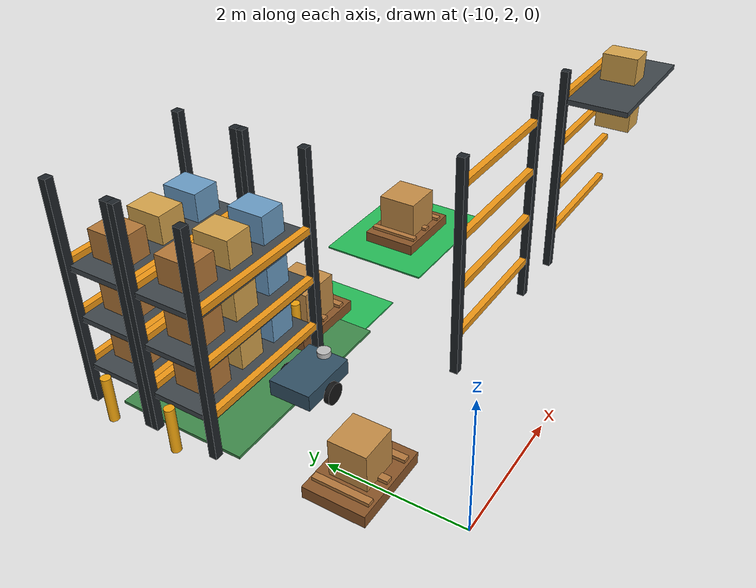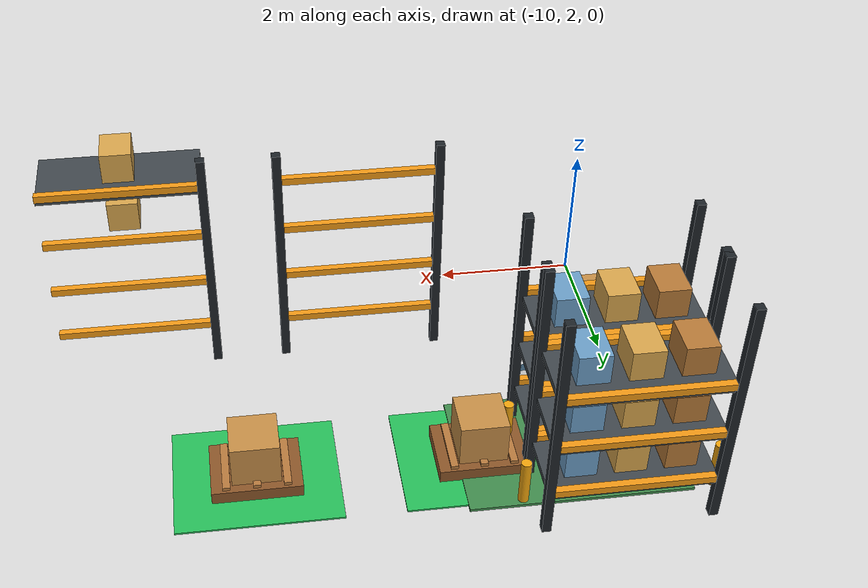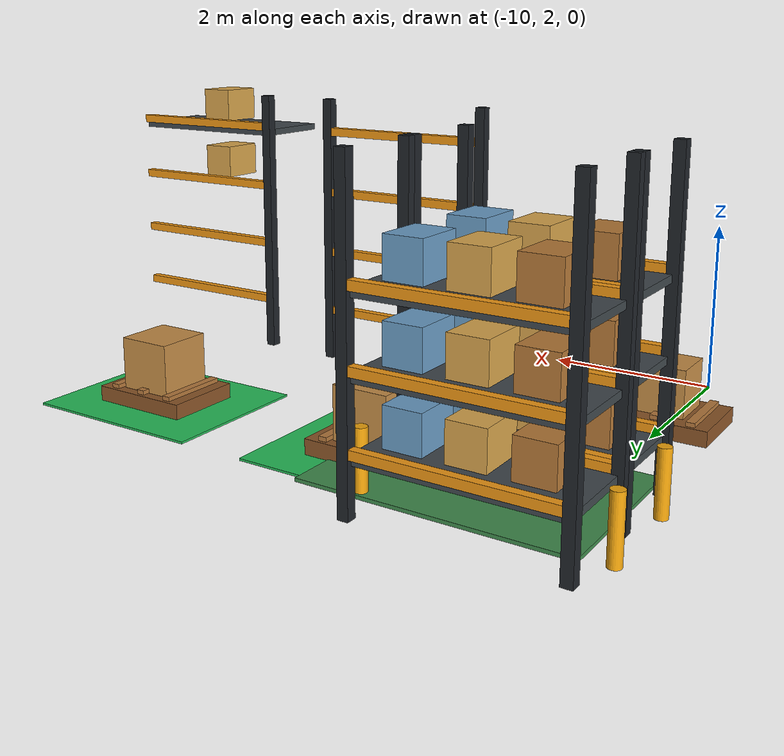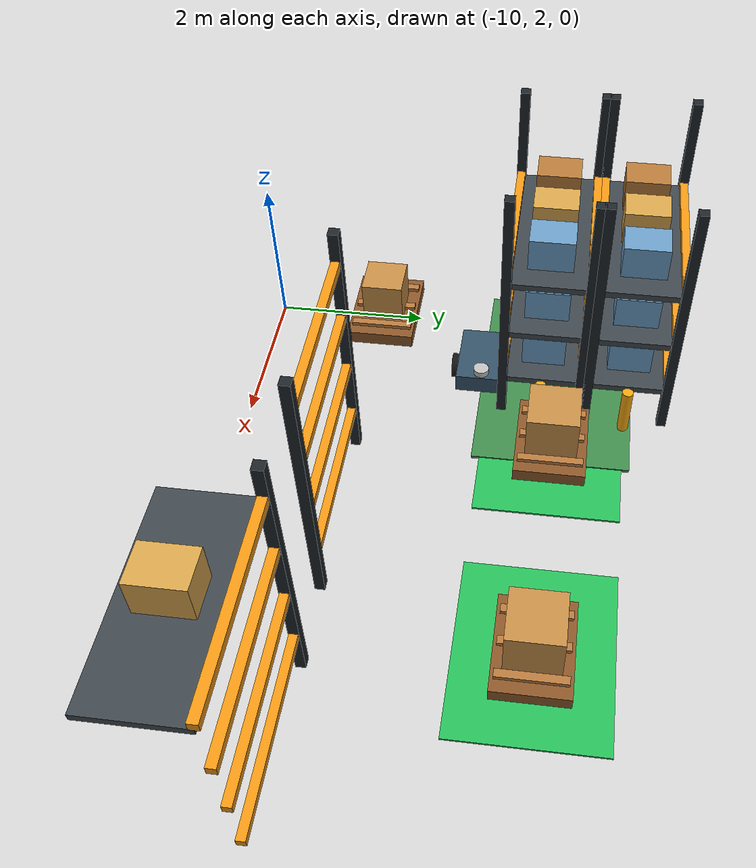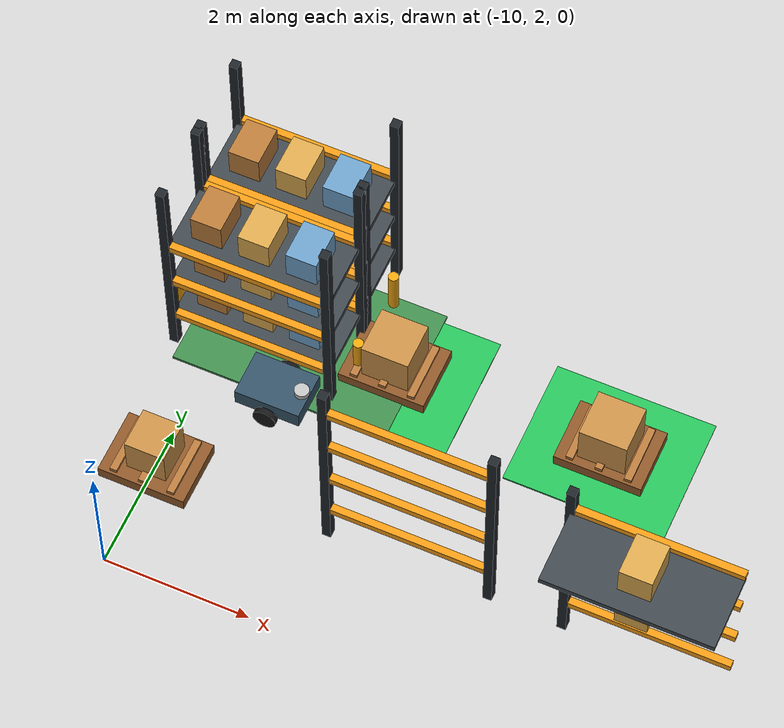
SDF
<sdf version="1.9">
 <world name="synaids_advanced_warehouse">
  <model name="pickup_zone">
   <static>true</static>
   <pose>-9 6 0.02 0 0 0</pose>
   <link name="link">
    <visual name="visual">
     <geometry><box><size>3 2 0.04</size></box></geometry>
     <material><ambient>0.08 0.25 0.10 1</ambient><diffuse>0.25 0.55 0.30 1</diffuse></material>
    </visual>
   </link>
  </model>
  <model name="R1">
   <pose>-9 5 0.25 0 0 0</pose>
   <link name="base_link">
    <inertial><mass>12</mass><inertia><ixx>0.5</ixx><iyy>0.5</iyy><izz>0.5</izz></inertia></inertial>
    <collision name="base_collision"><geometry><box><size>0.9 0.65 0.25</size></box></geometry></collision>
    <visual name="base_visual">
     <geometry><box><size>0.9 0.65 0.25</size></box></geometry>
     <material><ambient>0.10 0.16 0.20 1</ambient><diffuse>0.20 0.32 0.40 1</diffuse></material>
    </visual>
   </link>
   <link name="left_wheel">
    <pose>0 0.38 -0.12 1.5708 0 0</pose>
    <inertial><mass>1</mass><inertia><ixx>0.02</ixx><iyy>0.02</iyy><izz>0.02</izz></inertia></inertial>
    <collision name="collision">
     <geometry><cylinder><radius>0.16</radius><length>0.08</length></cylinder></geometry>
    </collision>
    <visual name="visual">
     <geometry><cylinder><radius>0.16</radius><length>0.08</length></cylinder></geometry>
     <material><ambient>0.03 0.03 0.03 1</ambient><diffuse>0.08 0.08 0.08 1</diffuse></material>
    </visual>
   </link>
   <link name="right_wheel">
    <pose>0 -0.38 -0.12 1.5708 0 0</pose>
    <inertial><mass>1</mass><inertia><ixx>0.02</ixx><iyy>0.02</iyy><izz>0.02</izz></inertia></inertial>
    <collision name="collision">
     <geometry><cylinder><radius>0.16</radius><length>0.08</length></cylinder></geometry>
    </collision>
    <visual name="visual">
     <geometry><cylinder><radius>0.16</radius><length>0.08</length></cylinder></geometry>
     <material><ambient>0.03 0.03 0.03 1</ambient><diffuse>0.08 0.08 0.08 1</diffuse></material>
    </visual>
   </link>
   <link name="sensor">
    <pose>0.35 0 0.18 0 0 0</pose>
    <visual name="visual">
     <geometry><cylinder><radius>0.10</radius><length>0.08</length></cylinder></geometry>
     <material><ambient>0.65 0.65 0.65 1</ambient><diffuse>0.75 0.75 0.75 1</diffuse></material>
    </visual>
   </link>
   <plugin filename="gz-sim-diff-drive-system" name="gz::sim::systems::DiffDrive">
    <left_joint>left_wheel_joint</left_joint>
    <right_joint>right_wheel_joint</right_joint>
    <wheel_separation>0.76</wheel_separation>
    <wheel_radius>0.16</wheel_radius>
    <topic>/R1/cmd_vel</topic>
    <odom_topic>/R1/odom</odom_topic>
    <frame_id>odom</frame_id>
    <child_frame_id>base_link</child_frame_id>
   </plugin>
   <link name="lidar">
    <pose>0 0 0.35 0 0 0</pose>
    <sensor name="lidar_sensor" type="gpu_lidar">
     <topic>/R1/scan</topic>
     <update_rate>10</update_rate>
     <lidar>
      <scan>
       <horizontal>
        <samples>360</samples>
        <resolution>1</resolution>
        <min_angle>-3.14159</min_angle>
        <max_angle>3.14159</max_angle>
       </horizontal>
      </scan>
      <range><min>0.12</min><max>12</max><resolution>0.01</resolution></range>
     </lidar>
    </sensor>
   </link>
   <joint name="left_wheel_joint" type="revolute">
    <parent>base_link</parent>
    <child>left_wheel</child>
    <axis><xyz>0 1 0</xyz></axis>
   </joint>
   <joint name="right_wheel_joint" type="revolute">
    <parent>base_link</parent>
    <child>right_wheel</child>
    <axis><xyz>0 1 0</xyz></axis>
   </joint>
  </model>
  <model name="storage_rack_1_post_1">
   <static>true</static>
   <pose>-7.6 3.5 1.7 0 0 0</pose>
   <link name="link">
    <visual name="visual">
     <geometry><box><size>0.12 0.12 3.4</size></box></geometry>
     <material>
      <ambient>0.12 0.14 0.16 1</ambient>
      <diffuse>0.12 0.14 0.16 1</diffuse>
      <specular>0.15 0.15 0.15 1</specular>
     </material>
    </visual>
    <collision name="collision"><geometry><box><size>0.12 0.12 3.4</size></box></geometry></collision>
   </link>
  </model>
  <model name="storage_rack_1_post_3">
   <static>true</static>
   <pose>-5.4 3.5 1.7 0 0 0</pose>
   <link name="link">
    <visual name="visual">
     <geometry><box><size>0.12 0.12 3.4</size></box></geometry>
     <material>
      <ambient>0.12 0.14 0.16 1</ambient>
      <diffuse>0.12 0.14 0.16 1</diffuse>
      <specular>0.15 0.15 0.15 1</specular>
     </material>
    </visual>
    <collision name="collision"><geometry><box><size>0.12 0.12 3.4</size></box></geometry></collision>
   </link>
  </model>
  <model name="storage_rack_1_beam_back_0">
   <static>true</static>
   <pose>-6.5 3.5 0.65 0 0 0</pose>
   <link name="link">
    <visual name="visual">
     <geometry><box><size>2.2 0.1 0.1</size></box></geometry>
     <material>
      <ambient>0.95 0.60 0.08 1</ambient>
      <diffuse>0.95 0.60 0.08 1</diffuse>
      <specular>0.15 0.15 0.15 1</specular>
     </material>
    </visual>
    <collision name="collision"><geometry><box><size>2.2 0.1 0.1</size></box></geometry></collision>
   </link>
  </model>
  <model name="storage_rack_1_beam_back_1">
   <static>true</static>
   <pose>-6.5 3.5 1.4300000000000002 0 0 0</pose>
   <link name="link">
    <visual name="visual">
     <geometry><box><size>2.2 0.1 0.1</size></box></geometry>
     <material>
      <ambient>0.95 0.60 0.08 1</ambient>
      <diffuse>0.95 0.60 0.08 1</diffuse>
      <specular>0.15 0.15 0.15 1</specular>
     </material>
    </visual>
    <collision name="collision"><geometry><box><size>2.2 0.1 0.1</size></box></geometry></collision>
   </link>
  </model>
  <model name="storage_rack_1_beam_back_2">
   <static>true</static>
   <pose>-6.5 3.5 2.21 0 0 0</pose>
   <link name="link">
    <visual name="visual">
     <geometry><box><size>2.2 0.1 0.1</size></box></geometry>
     <material>
      <ambient>0.95 0.60 0.08 1</ambient>
      <diffuse>0.95 0.60 0.08 1</diffuse>
      <specular>0.15 0.15 0.15 1</specular>
     </material>
    </visual>
    <collision name="collision"><geometry><box><size>2.2 0.1 0.1</size></box></geometry></collision>
   </link>
  </model>
  <model name="storage_rack_1_beam_back_3">
   <static>true</static>
   <pose>-6.5 3.5 2.9899999999999998 0 0 0</pose>
   <link name="link">
    <visual name="visual">
     <geometry><box><size>2.2 0.1 0.1</size></box></geometry>
     <material>
      <ambient>0.95 0.60 0.08 1</ambient>
      <diffuse>0.95 0.60 0.08 1</diffuse>
      <specular>0.15 0.15 0.15 1</specular>
     </material>
    </visual>
    <collision name="collision"><geometry><box><size>2.2 0.1 0.1</size></box></geometry></collision>
   </link>
  </model>
  <model name="storage_rack_2_post_1">
   <static>true</static>
   <pose>-4.4 3.5 1.7 0 0 0</pose>
   <link name="link">
    <visual name="visual">
     <geometry><box><size>0.12 0.12 3.4</size></box></geometry>
     <material>
      <ambient>0.12 0.14 0.16 1</ambient>
      <diffuse>0.12 0.14 0.16 1</diffuse>
      <specular>0.15 0.15 0.15 1</specular>
     </material>
    </visual>
    <collision name="collision"><geometry><box><size>0.12 0.12 3.4</size></box></geometry></collision>
   </link>
  </model>
  <model name="storage_rack_2_beam_back_0">
   <static>true</static>
   <pose>-3.3 3.5 0.65 0 0 0</pose>
   <link name="link">
    <visual name="visual">
     <geometry><box><size>2.2 0.1 0.1</size></box></geometry>
     <material>
      <ambient>0.95 0.60 0.08 1</ambient>
      <diffuse>0.95 0.60 0.08 1</diffuse>
      <specular>0.15 0.15 0.15 1</specular>
     </material>
    </visual>
    <collision name="collision"><geometry><box><size>2.2 0.1 0.1</size></box></geometry></collision>
   </link>
  </model>
  <model name="storage_rack_2_beam_back_1">
   <static>true</static>
   <pose>-3.3 3.5 1.4300000000000002 0 0 0</pose>
   <link name="link">
    <visual name="visual">
     <geometry><box><size>2.2 0.1 0.1</size></box></geometry>
     <material>
      <ambient>0.95 0.60 0.08 1</ambient>
      <diffuse>0.95 0.60 0.08 1</diffuse>
      <specular>0.15 0.15 0.15 1</specular>
     </material>
    </visual>
    <collision name="collision"><geometry><box><size>2.2 0.1 0.1</size></box></geometry></collision>
   </link>
  </model>
  <model name="storage_rack_2_beam_back_2">
   <static>true</static>
   <pose>-3.3 3.5 2.21 0 0 0</pose>
   <link name="link">
    <visual name="visual">
     <geometry><box><size>2.2 0.1 0.1</size></box></geometry>
     <material>
      <ambient>0.95 0.60 0.08 1</ambient>
      <diffuse>0.95 0.60 0.08 1</diffuse>
      <specular>0.15 0.15 0.15 1</specular>
     </material>
    </visual>
    <collision name="collision"><geometry><box><size>2.2 0.1 0.1</size></box></geometry></collision>
   </link>
  </model>
  <model name="storage_rack_2_package_2_1">
   <static>true</static>
   <pose>-3.3 3.0 2.43 0 0 0</pose>
   <link name="link">
    <visual name="visual">
     <geometry><box><size>0.42 0.55 0.42</size></box></geometry>
     <material>
      <ambient>0.85 0.65 0.30 1</ambient>
      <diffuse>0.85 0.65 0.30 1</diffuse>
      <specular>0.15 0.15 0.15 1</specular>
     </material>
    </visual>
    <collision name="collision"><geometry><box><size>0.42 0.55 0.42</size></box></geometry></collision>
   </link>
  </model>
  <model name="storage_rack_2_beam_back_3">
   <static>true</static>
   <pose>-3.3 3.5 2.9899999999999998 0 0 0</pose>
   <link name="link">
    <visual name="visual">
     <geometry><box><size>2.2 0.1 0.1</size></box></geometry>
     <material>
      <ambient>0.95 0.60 0.08 1</ambient>
      <diffuse>0.95 0.60 0.08 1</diffuse>
      <specular>0.15 0.15 0.15 1</specular>
     </material>
    </visual>
    <collision name="collision"><geometry><box><size>2.2 0.1 0.1</size></box></geometry></collision>
   </link>
  </model>
  <model name="storage_rack_2_shelf_3">
   <static>true</static>
   <pose>-3.3 3.0 2.9099999999999997 0 0 0</pose>
   <link name="link">
    <visual name="visual">
     <geometry><box><size>2.2 1.0 0.08</size></box></geometry>
     <material>
      <ambient>0.25 0.28 0.30 1</ambient>
      <diffuse>0.25 0.28 0.30 1</diffuse>
      <specular>0.15 0.15 0.15 1</specular>
     </material>
    </visual>
    <collision name="collision"><geometry><box><size>2.2 1.0 0.08</size></box></geometry></collision>
   </link>
  </model>
  <model name="storage_rack_2_package_3_1">
   <static>true</static>
   <pose>-3.3 3.0 3.21 0 0 0</pose>
   <link name="link">
    <visual name="visual">
     <geometry><box><size>0.42 0.55 0.42</size></box></geometry>
     <material>
      <ambient>0.85 0.65 0.30 1</ambient>
      <diffuse>0.85 0.65 0.30 1</diffuse>
      <specular>0.15 0.15 0.15 1</specular>
     </material>
    </visual>
    <collision name="collision"><geometry><box><size>0.42 0.55 0.42</size></box></geometry></collision>
   </link>
  </model>
  <model name="wall_rack_1_post_0">
   <static>true</static>
   <pose>-10.6 5.3 1.7 0 0 0</pose>
   <link name="link">
    <visual name="visual">
     <geometry><box><size>0.12 0.12 3.4</size></box></geometry>
     <material>
      <ambient>0.12 0.14 0.16 1</ambient>
      <diffuse>0.12 0.14 0.16 1</diffuse>
      <specular>0.15 0.15 0.15 1</specular>
     </material>
    </visual>
    <collision name="collision"><geometry><box><size>0.12 0.12 3.4</size></box></geometry></collision>
   </link>
  </model>
  <model name="wall_rack_1_post_1">
   <static>true</static>
   <pose>-10.6 6.3 1.7 0 0 0</pose>
   <link name="link">
    <visual name="visual">
     <geometry><box><size>0.12 0.12 3.4</size></box></geometry>
     <material>
      <ambient>0.12 0.14 0.16 1</ambient>
      <diffuse>0.12 0.14 0.16 1</diffuse>
      <specular>0.15 0.15 0.15 1</specular>
     </material>
    </visual>
    <collision name="collision"><geometry><box><size>0.12 0.12 3.4</size></box></geometry></collision>
   </link>
  </model>
  <model name="wall_rack_1_post_2">
   <static>true</static>
   <pose>-8.4 5.3 1.7 0 0 0</pose>
   <link name="link">
    <visual name="visual">
     <geometry><box><size>0.12 0.12 3.4</size></box></geometry>
     <material>
      <ambient>0.12 0.14 0.16 1</ambient>
      <diffuse>0.12 0.14 0.16 1</diffuse>
      <specular>0.15 0.15 0.15 1</specular>
     </material>
    </visual>
    <collision name="collision"><geometry><box><size>0.12 0.12 3.4</size></box></geometry></collision>
   </link>
  </model>
  <model name="wall_rack_1_post_3">
   <static>true</static>
   <pose>-8.4 6.3 1.7 0 0 0</pose>
   <link name="link">
    <visual name="visual">
     <geometry><box><size>0.12 0.12 3.4</size></box></geometry>
     <material>
      <ambient>0.12 0.14 0.16 1</ambient>
      <diffuse>0.12 0.14 0.16 1</diffuse>
      <specular>0.15 0.15 0.15 1</specular>
     </material>
    </visual>
    <collision name="collision"><geometry><box><size>0.12 0.12 3.4</size></box></geometry></collision>
   </link>
  </model>
  <model name="wall_rack_1_beam_front_0">
   <static>true</static>
   <pose>-9.5 5.3 0.65 0 0 0</pose>
   <link name="link">
    <visual name="visual">
     <geometry><box><size>2.2 0.1 0.1</size></box></geometry>
     <material>
      <ambient>0.95 0.60 0.08 1</ambient>
      <diffuse>0.95 0.60 0.08 1</diffuse>
      <specular>0.15 0.15 0.15 1</specular>
     </material>
    </visual>
    <collision name="collision"><geometry><box><size>2.2 0.1 0.1</size></box></geometry></collision>
   </link>
  </model>
  <model name="wall_rack_1_beam_back_0">
   <static>true</static>
   <pose>-9.5 6.3 0.65 0 0 0</pose>
   <link name="link">
    <visual name="visual">
     <geometry><box><size>2.2 0.1 0.1</size></box></geometry>
     <material>
      <ambient>0.95 0.60 0.08 1</ambient>
      <diffuse>0.95 0.60 0.08 1</diffuse>
      <specular>0.15 0.15 0.15 1</specular>
     </material>
    </visual>
    <collision name="collision"><geometry><box><size>2.2 0.1 0.1</size></box></geometry></collision>
   </link>
  </model>
  <model name="wall_rack_1_shelf_0">
   <static>true</static>
   <pose>-9.5 5.8 0.5700000000000001 0 0 0</pose>
   <link name="link">
    <visual name="visual">
     <geometry><box><size>2.2 1.0 0.08</size></box></geometry>
     <material>
      <ambient>0.25 0.28 0.30 1</ambient>
      <diffuse>0.25 0.28 0.30 1</diffuse>
      <specular>0.15 0.15 0.15 1</specular>
     </material>
    </visual>
    <collision name="collision"><geometry><box><size>2.2 1.0 0.08</size></box></geometry></collision>
   </link>
  </model>
  <model name="wall_rack_1_package_0_0">
   <static>true</static>
   <pose>-10.15 5.8 0.87 0 0 0</pose>
   <link name="link">
    <visual name="visual">
     <geometry><box><size>0.42 0.55 0.42</size></box></geometry>
     <material>
      <ambient>0.72 0.48 0.22 1</ambient>
      <diffuse>0.72 0.48 0.22 1</diffuse>
      <specular>0.15 0.15 0.15 1</specular>
     </material>
    </visual>
    <collision name="collision"><geometry><box><size>0.42 0.55 0.42</size></box></geometry></collision>
   </link>
  </model>
  <model name="wall_rack_1_package_0_1">
   <static>true</static>
   <pose>-9.5 5.8 0.87 0 0 0</pose>
   <link name="link">
    <visual name="visual">
     <geometry><box><size>0.42 0.55 0.42</size></box></geometry>
     <material>
      <ambient>0.85 0.65 0.30 1</ambient>
      <diffuse>0.85 0.65 0.30 1</diffuse>
      <specular>0.15 0.15 0.15 1</specular>
     </material>
    </visual>
    <collision name="collision"><geometry><box><size>0.42 0.55 0.42</size></box></geometry></collision>
   </link>
  </model>
  <model name="wall_rack_1_package_0_2">
   <static>true</static>
   <pose>-8.85 5.8 0.87 0 0 0</pose>
   <link name="link">
    <visual name="visual">
     <geometry><box><size>0.42 0.55 0.42</size></box></geometry>
     <material>
      <ambient>0.42 0.62 0.78 1</ambient>
      <diffuse>0.42 0.62 0.78 1</diffuse>
      <specular>0.15 0.15 0.15 1</specular>
     </material>
    </visual>
    <collision name="collision"><geometry><box><size>0.42 0.55 0.42</size></box></geometry></collision>
   </link>
  </model>
  <model name="wall_rack_1_beam_front_1">
   <static>true</static>
   <pose>-9.5 5.3 1.4300000000000002 0 0 0</pose>
   <link name="link">
    <visual name="visual">
     <geometry><box><size>2.2 0.1 0.1</size></box></geometry>
     <material>
      <ambient>0.95 0.60 0.08 1</ambient>
      <diffuse>0.95 0.60 0.08 1</diffuse>
      <specular>0.15 0.15 0.15 1</specular>
     </material>
    </visual>
    <collision name="collision"><geometry><box><size>2.2 0.1 0.1</size></box></geometry></collision>
   </link>
  </model>
  <model name="wall_rack_1_beam_back_1">
   <static>true</static>
   <pose>-9.5 6.3 1.4300000000000002 0 0 0</pose>
   <link name="link">
    <visual name="visual">
     <geometry><box><size>2.2 0.1 0.1</size></box></geometry>
     <material>
      <ambient>0.95 0.60 0.08 1</ambient>
      <diffuse>0.95 0.60 0.08 1</diffuse>
      <specular>0.15 0.15 0.15 1</specular>
     </material>
    </visual>
    <collision name="collision"><geometry><box><size>2.2 0.1 0.1</size></box></geometry></collision>
   </link>
  </model>
  <model name="wall_rack_1_shelf_1">
   <static>true</static>
   <pose>-9.5 5.8 1.35 0 0 0</pose>
   <link name="link">
    <visual name="visual">
     <geometry><box><size>2.2 1.0 0.08</size></box></geometry>
     <material>
      <ambient>0.25 0.28 0.30 1</ambient>
      <diffuse>0.25 0.28 0.30 1</diffuse>
      <specular>0.15 0.15 0.15 1</specular>
     </material>
    </visual>
    <collision name="collision"><geometry><box><size>2.2 1.0 0.08</size></box></geometry></collision>
   </link>
  </model>
  <model name="wall_rack_1_package_1_0">
   <static>true</static>
   <pose>-10.15 5.8 1.6500000000000001 0 0 0</pose>
   <link name="link">
    <visual name="visual">
     <geometry><box><size>0.42 0.55 0.42</size></box></geometry>
     <material>
      <ambient>0.72 0.48 0.22 1</ambient>
      <diffuse>0.72 0.48 0.22 1</diffuse>
      <specular>0.15 0.15 0.15 1</specular>
     </material>
    </visual>
    <collision name="collision"><geometry><box><size>0.42 0.55 0.42</size></box></geometry></collision>
   </link>
  </model>
  <model name="wall_rack_1_package_1_1">
   <static>true</static>
   <pose>-9.5 5.8 1.6500000000000001 0 0 0</pose>
   <link name="link">
    <visual name="visual">
     <geometry><box><size>0.42 0.55 0.42</size></box></geometry>
     <material>
      <ambient>0.85 0.65 0.30 1</ambient>
      <diffuse>0.85 0.65 0.30 1</diffuse>
      <specular>0.15 0.15 0.15 1</specular>
     </material>
    </visual>
    <collision name="collision"><geometry><box><size>0.42 0.55 0.42</size></box></geometry></collision>
   </link>
  </model>
  <model name="wall_rack_1_package_1_2">
   <static>true</static>
   <pose>-8.85 5.8 1.6500000000000001 0 0 0</pose>
   <link name="link">
    <visual name="visual">
     <geometry><box><size>0.42 0.55 0.42</size></box></geometry>
     <material>
      <ambient>0.42 0.62 0.78 1</ambient>
      <diffuse>0.42 0.62 0.78 1</diffuse>
      <specular>0.15 0.15 0.15 1</specular>
     </material>
    </visual>
    <collision name="collision"><geometry><box><size>0.42 0.55 0.42</size></box></geometry></collision>
   </link>
  </model>
  <model name="wall_rack_1_beam_front_2">
   <static>true</static>
   <pose>-9.5 5.3 2.21 0 0 0</pose>
   <link name="link">
    <visual name="visual">
     <geometry><box><size>2.2 0.1 0.1</size></box></geometry>
     <material>
      <ambient>0.95 0.60 0.08 1</ambient>
      <diffuse>0.95 0.60 0.08 1</diffuse>
      <specular>0.15 0.15 0.15 1</specular>
     </material>
    </visual>
    <collision name="collision"><geometry><box><size>2.2 0.1 0.1</size></box></geometry></collision>
   </link>
  </model>
  <model name="wall_rack_1_beam_back_2">
   <static>true</static>
   <pose>-9.5 6.3 2.21 0 0 0</pose>
   <link name="link">
    <visual name="visual">
     <geometry><box><size>2.2 0.1 0.1</size></box></geometry>
     <material>
      <ambient>0.95 0.60 0.08 1</ambient>
      <diffuse>0.95 0.60 0.08 1</diffuse>
      <specular>0.15 0.15 0.15 1</specular>
     </material>
    </visual>
    <collision name="collision"><geometry><box><size>2.2 0.1 0.1</size></box></geometry></collision>
   </link>
  </model>
  <model name="wall_rack_1_shelf_2">
   <static>true</static>
   <pose>-9.5 5.8 2.13 0 0 0</pose>
   <link name="link">
    <visual name="visual">
     <geometry><box><size>2.2 1.0 0.08</size></box></geometry>
     <material>
      <ambient>0.25 0.28 0.30 1</ambient>
      <diffuse>0.25 0.28 0.30 1</diffuse>
      <specular>0.15 0.15 0.15 1</specular>
     </material>
    </visual>
    <collision name="collision"><geometry><box><size>2.2 1.0 0.08</size></box></geometry></collision>
   </link>
  </model>
  <model name="wall_rack_1_package_2_0">
   <static>true</static>
   <pose>-10.15 5.8 2.43 0 0 0</pose>
   <link name="link">
    <visual name="visual">
     <geometry><box><size>0.42 0.55 0.42</size></box></geometry>
     <material>
      <ambient>0.72 0.48 0.22 1</ambient>
      <diffuse>0.72 0.48 0.22 1</diffuse>
      <specular>0.15 0.15 0.15 1</specular>
     </material>
    </visual>
    <collision name="collision"><geometry><box><size>0.42 0.55 0.42</size></box></geometry></collision>
   </link>
  </model>
  <model name="wall_rack_1_package_2_1">
   <static>true</static>
   <pose>-9.5 5.8 2.43 0 0 0</pose>
   <link name="link">
    <visual name="visual">
     <geometry><box><size>0.42 0.55 0.42</size></box></geometry>
     <material>
      <ambient>0.85 0.65 0.30 1</ambient>
      <diffuse>0.85 0.65 0.30 1</diffuse>
      <specular>0.15 0.15 0.15 1</specular>
     </material>
    </visual>
    <collision name="collision"><geometry><box><size>0.42 0.55 0.42</size></box></geometry></collision>
   </link>
  </model>
  <model name="wall_rack_1_package_2_2">
   <static>true</static>
   <pose>-8.85 5.8 2.43 0 0 0</pose>
   <link name="link">
    <visual name="visual">
     <geometry><box><size>0.42 0.55 0.42</size></box></geometry>
     <material>
      <ambient>0.42 0.62 0.78 1</ambient>
      <diffuse>0.42 0.62 0.78 1</diffuse>
      <specular>0.15 0.15 0.15 1</specular>
     </material>
    </visual>
    <collision name="collision"><geometry><box><size>0.42 0.55 0.42</size></box></geometry></collision>
   </link>
  </model>
  <model name="wall_rack_1_guard_left">
   <static>true</static>
   <pose>-10.78 5.8 0.35 0 0 0</pose>
   <link name="link">
    <visual name="visual">
     <geometry><cylinder><radius>0.07</radius><length>0.7</length></cylinder></geometry>
     <material>
      <ambient>0.95 0.65 0.05 1</ambient>
      <diffuse>0.95 0.65 0.05 1</diffuse>
      <specular>0.15 0.15 0.15 1</specular>
     </material>
    </visual>
    <collision name="collision">
     <geometry><cylinder><radius>0.07</radius><length>0.7</length></cylinder></geometry>
    </collision>
   </link>
  </model>
  <model name="wall_rack_1_guard_right">
   <static>true</static>
   <pose>-8.22 5.8 0.35 0 0 0</pose>
   <link name="link">
    <visual name="visual">
     <geometry><cylinder><radius>0.07</radius><length>0.7</length></cylinder></geometry>
     <material>
      <ambient>0.95 0.65 0.05 1</ambient>
      <diffuse>0.95 0.65 0.05 1</diffuse>
      <specular>0.15 0.15 0.15 1</specular>
     </material>
    </visual>
    <collision name="collision">
     <geometry><cylinder><radius>0.07</radius><length>0.7</length></cylinder></geometry>
    </collision>
   </link>
  </model>
  <model name="wall_rack_2_post_0">
   <static>true</static>
   <pose>-10.6 6.4 1.7 0 0 0</pose>
   <link name="link">
    <visual name="visual">
     <geometry><box><size>0.12 0.12 3.4</size></box></geometry>
     <material>
      <ambient>0.12 0.14 0.16 1</ambient>
      <diffuse>0.12 0.14 0.16 1</diffuse>
      <specular>0.15 0.15 0.15 1</specular>
     </material>
    </visual>
    <collision name="collision"><geometry><box><size>0.12 0.12 3.4</size></box></geometry></collision>
   </link>
  </model>
  <model name="wall_rack_2_post_1">
   <static>true</static>
   <pose>-10.6 7.4 1.7 0 0 0</pose>
   <link name="link">
    <visual name="visual">
     <geometry><box><size>0.12 0.12 3.4</size></box></geometry>
     <material>
      <ambient>0.12 0.14 0.16 1</ambient>
      <diffuse>0.12 0.14 0.16 1</diffuse>
      <specular>0.15 0.15 0.15 1</specular>
     </material>
    </visual>
    <collision name="collision"><geometry><box><size>0.12 0.12 3.4</size></box></geometry></collision>
   </link>
  </model>
  <model name="wall_rack_2_post_2">
   <static>true</static>
   <pose>-8.4 6.4 1.7 0 0 0</pose>
   <link name="link">
    <visual name="visual">
     <geometry><box><size>0.12 0.12 3.4</size></box></geometry>
     <material>
      <ambient>0.12 0.14 0.16 1</ambient>
      <diffuse>0.12 0.14 0.16 1</diffuse>
      <specular>0.15 0.15 0.15 1</specular>
     </material>
    </visual>
    <collision name="collision"><geometry><box><size>0.12 0.12 3.4</size></box></geometry></collision>
   </link>
  </model>
  <model name="wall_rack_2_post_3">
   <static>true</static>
   <pose>-8.4 7.4 1.7 0 0 0</pose>
   <link name="link">
    <visual name="visual">
     <geometry><box><size>0.12 0.12 3.4</size></box></geometry>
     <material>
      <ambient>0.12 0.14 0.16 1</ambient>
      <diffuse>0.12 0.14 0.16 1</diffuse>
      <specular>0.15 0.15 0.15 1</specular>
     </material>
    </visual>
    <collision name="collision"><geometry><box><size>0.12 0.12 3.4</size></box></geometry></collision>
   </link>
  </model>
  <model name="wall_rack_2_beam_front_0">
   <static>true</static>
   <pose>-9.5 6.4 0.65 0 0 0</pose>
   <link name="link">
    <visual name="visual">
     <geometry><box><size>2.2 0.1 0.1</size></box></geometry>
     <material>
      <ambient>0.95 0.60 0.08 1</ambient>
      <diffuse>0.95 0.60 0.08 1</diffuse>
      <specular>0.15 0.15 0.15 1</specular>
     </material>
    </visual>
    <collision name="collision"><geometry><box><size>2.2 0.1 0.1</size></box></geometry></collision>
   </link>
  </model>
  <model name="wall_rack_2_beam_back_0">
   <static>true</static>
   <pose>-9.5 7.4 0.65 0 0 0</pose>
   <link name="link">
    <visual name="visual">
     <geometry><box><size>2.2 0.1 0.1</size></box></geometry>
     <material>
      <ambient>0.95 0.60 0.08 1</ambient>
      <diffuse>0.95 0.60 0.08 1</diffuse>
      <specular>0.15 0.15 0.15 1</specular>
     </material>
    </visual>
    <collision name="collision"><geometry><box><size>2.2 0.1 0.1</size></box></geometry></collision>
   </link>
  </model>
  <model name="wall_rack_2_shelf_0">
   <static>true</static>
   <pose>-9.5 6.9 0.5700000000000001 0 0 0</pose>
   <link name="link">
    <visual name="visual">
     <geometry><box><size>2.2 1.0 0.08</size></box></geometry>
     <material>
      <ambient>0.25 0.28 0.30 1</ambient>
      <diffuse>0.25 0.28 0.30 1</diffuse>
      <specular>0.15 0.15 0.15 1</specular>
     </material>
    </visual>
    <collision name="collision"><geometry><box><size>2.2 1.0 0.08</size></box></geometry></collision>
   </link>
  </model>
  <model name="wall_rack_2_package_0_0">
   <static>true</static>
   <pose>-10.15 6.9 0.87 0 0 0</pose>
   <link name="link">
    <visual name="visual">
     <geometry><box><size>0.42 0.55 0.42</size></box></geometry>
     <material>
      <ambient>0.72 0.48 0.22 1</ambient>
      <diffuse>0.72 0.48 0.22 1</diffuse>
      <specular>0.15 0.15 0.15 1</specular>
     </material>
    </visual>
    <collision name="collision"><geometry><box><size>0.42 0.55 0.42</size></box></geometry></collision>
   </link>
  </model>
  <model name="wall_rack_2_package_0_1">
   <static>true</static>
   <pose>-9.5 6.9 0.87 0 0 0</pose>
   <link name="link">
    <visual name="visual">
     <geometry><box><size>0.42 0.55 0.42</size></box></geometry>
     <material>
      <ambient>0.85 0.65 0.30 1</ambient>
      <diffuse>0.85 0.65 0.30 1</diffuse>
      <specular>0.15 0.15 0.15 1</specular>
     </material>
    </visual>
    <collision name="collision"><geometry><box><size>0.42 0.55 0.42</size></box></geometry></collision>
   </link>
  </model>
  <model name="wall_rack_2_package_0_2">
   <static>true</static>
   <pose>-8.85 6.9 0.87 0 0 0</pose>
   <link name="link">
    <visual name="visual">
     <geometry><box><size>0.42 0.55 0.42</size></box></geometry>
     <material>
      <ambient>0.42 0.62 0.78 1</ambient>
      <diffuse>0.42 0.62 0.78 1</diffuse>
      <specular>0.15 0.15 0.15 1</specular>
     </material>
    </visual>
    <collision name="collision"><geometry><box><size>0.42 0.55 0.42</size></box></geometry></collision>
   </link>
  </model>
  <model name="wall_rack_2_beam_front_1">
   <static>true</static>
   <pose>-9.5 6.4 1.4300000000000002 0 0 0</pose>
   <link name="link">
    <visual name="visual">
     <geometry><box><size>2.2 0.1 0.1</size></box></geometry>
     <material>
      <ambient>0.95 0.60 0.08 1</ambient>
      <diffuse>0.95 0.60 0.08 1</diffuse>
      <specular>0.15 0.15 0.15 1</specular>
     </material>
    </visual>
    <collision name="collision"><geometry><box><size>2.2 0.1 0.1</size></box></geometry></collision>
   </link>
  </model>
  <model name="wall_rack_2_beam_back_1">
   <static>true</static>
   <pose>-9.5 7.4 1.4300000000000002 0 0 0</pose>
   <link name="link">
    <visual name="visual">
     <geometry><box><size>2.2 0.1 0.1</size></box></geometry>
     <material>
      <ambient>0.95 0.60 0.08 1</ambient>
      <diffuse>0.95 0.60 0.08 1</diffuse>
      <specular>0.15 0.15 0.15 1</specular>
     </material>
    </visual>
    <collision name="collision"><geometry><box><size>2.2 0.1 0.1</size></box></geometry></collision>
   </link>
  </model>
  <model name="wall_rack_2_shelf_1">
   <static>true</static>
   <pose>-9.5 6.9 1.35 0 0 0</pose>
   <link name="link">
    <visual name="visual">
     <geometry><box><size>2.2 1.0 0.08</size></box></geometry>
     <material>
      <ambient>0.25 0.28 0.30 1</ambient>
      <diffuse>0.25 0.28 0.30 1</diffuse>
      <specular>0.15 0.15 0.15 1</specular>
     </material>
    </visual>
    <collision name="collision"><geometry><box><size>2.2 1.0 0.08</size></box></geometry></collision>
   </link>
  </model>
  <model name="wall_rack_2_package_1_0">
   <static>true</static>
   <pose>-10.15 6.9 1.6500000000000001 0 0 0</pose>
   <link name="link">
    <visual name="visual">
     <geometry><box><size>0.42 0.55 0.42</size></box></geometry>
     <material>
      <ambient>0.72 0.48 0.22 1</ambient>
      <diffuse>0.72 0.48 0.22 1</diffuse>
      <specular>0.15 0.15 0.15 1</specular>
     </material>
    </visual>
    <collision name="collision"><geometry><box><size>0.42 0.55 0.42</size></box></geometry></collision>
   </link>
  </model>
  <model name="wall_rack_2_package_1_1">
   <static>true</static>
   <pose>-9.5 6.9 1.6500000000000001 0 0 0</pose>
   <link name="link">
    <visual name="visual">
     <geometry><box><size>0.42 0.55 0.42</size></box></geometry>
     <material>
      <ambient>0.85 0.65 0.30 1</ambient>
      <diffuse>0.85 0.65 0.30 1</diffuse>
      <specular>0.15 0.15 0.15 1</specular>
     </material>
    </visual>
    <collision name="collision"><geometry><box><size>0.42 0.55 0.42</size></box></geometry></collision>
   </link>
  </model>
  <model name="wall_rack_2_package_1_2">
   <static>true</static>
   <pose>-8.85 6.9 1.6500000000000001 0 0 0</pose>
   <link name="link">
    <visual name="visual">
     <geometry><box><size>0.42 0.55 0.42</size></box></geometry>
     <material>
      <ambient>0.42 0.62 0.78 1</ambient>
      <diffuse>0.42 0.62 0.78 1</diffuse>
      <specular>0.15 0.15 0.15 1</specular>
     </material>
    </visual>
    <collision name="collision"><geometry><box><size>0.42 0.55 0.42</size></box></geometry></collision>
   </link>
  </model>
  <model name="wall_rack_2_beam_front_2">
   <static>true</static>
   <pose>-9.5 6.4 2.21 0 0 0</pose>
   <link name="link">
    <visual name="visual">
     <geometry><box><size>2.2 0.1 0.1</size></box></geometry>
     <material>
      <ambient>0.95 0.60 0.08 1</ambient>
      <diffuse>0.95 0.60 0.08 1</diffuse>
      <specular>0.15 0.15 0.15 1</specular>
     </material>
    </visual>
    <collision name="collision"><geometry><box><size>2.2 0.1 0.1</size></box></geometry></collision>
   </link>
  </model>
  <model name="wall_rack_2_beam_back_2">
   <static>true</static>
   <pose>-9.5 7.4 2.21 0 0 0</pose>
   <link name="link">
    <visual name="visual">
     <geometry><box><size>2.2 0.1 0.1</size></box></geometry>
     <material>
      <ambient>0.95 0.60 0.08 1</ambient>
      <diffuse>0.95 0.60 0.08 1</diffuse>
      <specular>0.15 0.15 0.15 1</specular>
     </material>
    </visual>
    <collision name="collision"><geometry><box><size>2.2 0.1 0.1</size></box></geometry></collision>
   </link>
  </model>
  <model name="wall_rack_2_shelf_2">
   <static>true</static>
   <pose>-9.5 6.9 2.13 0 0 0</pose>
   <link name="link">
    <visual name="visual">
     <geometry><box><size>2.2 1.0 0.08</size></box></geometry>
     <material>
      <ambient>0.25 0.28 0.30 1</ambient>
      <diffuse>0.25 0.28 0.30 1</diffuse>
      <specular>0.15 0.15 0.15 1</specular>
     </material>
    </visual>
    <collision name="collision"><geometry><box><size>2.2 1.0 0.08</size></box></geometry></collision>
   </link>
  </model>
  <model name="wall_rack_2_package_2_0">
   <static>true</static>
   <pose>-10.15 6.9 2.43 0 0 0</pose>
   <link name="link">
    <visual name="visual">
     <geometry><box><size>0.42 0.55 0.42</size></box></geometry>
     <material>
      <ambient>0.72 0.48 0.22 1</ambient>
      <diffuse>0.72 0.48 0.22 1</diffuse>
      <specular>0.15 0.15 0.15 1</specular>
     </material>
    </visual>
    <collision name="collision"><geometry><box><size>0.42 0.55 0.42</size></box></geometry></collision>
   </link>
  </model>
  <model name="wall_rack_2_package_2_1">
   <static>true</static>
   <pose>-9.5 6.9 2.43 0 0 0</pose>
   <link name="link">
    <visual name="visual">
     <geometry><box><size>0.42 0.55 0.42</size></box></geometry>
     <material>
      <ambient>0.85 0.65 0.30 1</ambient>
      <diffuse>0.85 0.65 0.30 1</diffuse>
      <specular>0.15 0.15 0.15 1</specular>
     </material>
    </visual>
    <collision name="collision"><geometry><box><size>0.42 0.55 0.42</size></box></geometry></collision>
   </link>
  </model>
  <model name="wall_rack_2_package_2_2">
   <static>true</static>
   <pose>-8.85 6.9 2.43 0 0 0</pose>
   <link name="link">
    <visual name="visual">
     <geometry><box><size>0.42 0.55 0.42</size></box></geometry>
     <material>
      <ambient>0.42 0.62 0.78 1</ambient>
      <diffuse>0.42 0.62 0.78 1</diffuse>
      <specular>0.15 0.15 0.15 1</specular>
     </material>
    </visual>
    <collision name="collision"><geometry><box><size>0.42 0.55 0.42</size></box></geometry></collision>
   </link>
  </model>
  <model name="wall_rack_2_guard_left">
   <static>true</static>
   <pose>-10.78 6.9 0.35 0 0 0</pose>
   <link name="link">
    <visual name="visual">
     <geometry><cylinder><radius>0.07</radius><length>0.7</length></cylinder></geometry>
     <material>
      <ambient>0.95 0.65 0.05 1</ambient>
      <diffuse>0.95 0.65 0.05 1</diffuse>
      <specular>0.15 0.15 0.15 1</specular>
     </material>
    </visual>
    <collision name="collision">
     <geometry><cylinder><radius>0.07</radius><length>0.7</length></cylinder></geometry>
    </collision>
   </link>
  </model>
  <model name="wall_rack_2_guard_right">
   <static>true</static>
   <pose>-8.22 6.9 0.35 0 0 0</pose>
   <link name="link">
    <visual name="visual">
     <geometry><cylinder><radius>0.07</radius><length>0.7</length></cylinder></geometry>
     <material>
      <ambient>0.95 0.65 0.05 1</ambient>
      <diffuse>0.95 0.65 0.05 1</diffuse>
      <specular>0.15 0.15 0.15 1</specular>
     </material>
    </visual>
    <collision name="collision">
     <geometry><cylinder><radius>0.07</radius><length>0.7</length></cylinder></geometry>
    </collision>
   </link>
  </model>
  <model name="pickup_zone_1">
   <static>true</static>
   <pose>-7.8 6.0 0.012 0 0 0</pose>
   <link name="link">
    <visual name="visual">
     <geometry><box><size>2.2 1.8 0.025</size></box></geometry>
     <material>
      <ambient>0.15 0.75 0.35 1</ambient>
      <diffuse>0.15 0.75 0.35 1</diffuse>
      <specular>0.15 0.15 0.15 1</specular>
     </material>
    </visual>
   </link>
  </model>
  <model name="pickup_pallet_1_base">
   <static>true</static>
   <pose>-7.8 6.0 0.11 0 0 0</pose>
   <link name="link">
    <visual name="visual">
     <geometry><box><size>1.2 0.9 0.18</size></box></geometry>
     <material>
      <ambient>0.55 0.34 0.16 1</ambient>
      <diffuse>0.55 0.34 0.16 1</diffuse>
      <specular>0.15 0.15 0.15 1</specular>
     </material>
    </visual>
    <collision name="collision"><geometry><box><size>1.2 0.9 0.18</size></box></geometry></collision>
   </link>
  </model>
  <model name="pickup_pallet_1_slat_0">
   <static>true</static>
   <pose>-8.2 6.0 0.22 0 0 0</pose>
   <link name="link">
    <visual name="visual">
     <geometry><box><size>0.1 0.82 0.06</size></box></geometry>
     <material>
      <ambient>0.72 0.48 0.24 1</ambient>
      <diffuse>0.72 0.48 0.24 1</diffuse>
      <specular>0.15 0.15 0.15 1</specular>
     </material>
    </visual>
    <collision name="collision"><geometry><box><size>0.1 0.82 0.06</size></box></geometry></collision>
   </link>
  </model>
  <model name="pickup_pallet_1_slat_1">
   <static>true</static>
   <pose>-7.799999999999999 6.0 0.22 0 0 0</pose>
   <link name="link">
    <visual name="visual">
     <geometry><box><size>0.1 0.82 0.06</size></box></geometry>
     <material>
      <ambient>0.72 0.48 0.24 1</ambient>
      <diffuse>0.72 0.48 0.24 1</diffuse>
      <specular>0.15 0.15 0.15 1</specular>
     </material>
    </visual>
    <collision name="collision"><geometry><box><size>0.1 0.82 0.06</size></box></geometry></collision>
   </link>
  </model>
  <model name="pickup_pallet_1_slat_2">
   <static>true</static>
   <pose>-7.3999999999999995 6.0 0.22 0 0 0</pose>
   <link name="link">
    <visual name="visual">
     <geometry><box><size>0.1 0.82 0.06</size></box></geometry>
     <material>
      <ambient>0.72 0.48 0.24 1</ambient>
      <diffuse>0.72 0.48 0.24 1</diffuse>
      <specular>0.15 0.15 0.15 1</specular>
     </material>
    </visual>
    <collision name="collision"><geometry><box><size>0.1 0.82 0.06</size></box></geometry></collision>
   </link>
  </model>
  <model name="pickup_package_1">
   <static>true</static>
   <pose>-7.8 6.0 0.48 0 0 0</pose>
   <link name="link">
    <visual name="visual">
     <geometry><box><size>0.65 0.65 0.65</size></box></geometry>
     <material>
      <ambient>0.78 0.56 0.28 1</ambient>
      <diffuse>0.78 0.56 0.28 1</diffuse>
      <specular>0.15 0.15 0.15 1</specular>
     </material>
    </visual>
    <collision name="collision"><geometry><box><size>0.65 0.65 0.65</size></box></geometry></collision>
   </link>
  </model>
  <model name="pickup_zone_2">
   <static>true</static>
   <pose>-4.8 6.0 0.012 0 0 0</pose>
   <link name="link">
    <visual name="visual">
     <geometry><box><size>2.2 1.8 0.025</size></box></geometry>
     <material>
      <ambient>0.15 0.75 0.35 1</ambient>
      <diffuse>0.15 0.75 0.35 1</diffuse>
      <specular>0.15 0.15 0.15 1</specular>
     </material>
    </visual>
   </link>
  </model>
  <model name="pickup_pallet_2_base">
   <static>true</static>
   <pose>-4.8 6.0 0.11 0 0 0</pose>
   <link name="link">
    <visual name="visual">
     <geometry><box><size>1.2 0.9 0.18</size></box></geometry>
     <material>
      <ambient>0.55 0.34 0.16 1</ambient>
      <diffuse>0.55 0.34 0.16 1</diffuse>
      <specular>0.15 0.15 0.15 1</specular>
     </material>
    </visual>
    <collision name="collision"><geometry><box><size>1.2 0.9 0.18</size></box></geometry></collision>
   </link>
  </model>
  <model name="pickup_pallet_2_slat_0">
   <static>true</static>
   <pose>-5.2 6.0 0.22 0 0 0</pose>
   <link name="link">
    <visual name="visual">
     <geometry><box><size>0.1 0.82 0.06</size></box></geometry>
     <material>
      <ambient>0.72 0.48 0.24 1</ambient>
      <diffuse>0.72 0.48 0.24 1</diffuse>
      <specular>0.15 0.15 0.15 1</specular>
     </material>
    </visual>
    <collision name="collision"><geometry><box><size>0.1 0.82 0.06</size></box></geometry></collision>
   </link>
  </model>
  <model name="pickup_pallet_2_slat_1">
   <static>true</static>
   <pose>-4.8 6.0 0.22 0 0 0</pose>
   <link name="link">
    <visual name="visual">
     <geometry><box><size>0.1 0.82 0.06</size></box></geometry>
     <material>
      <ambient>0.72 0.48 0.24 1</ambient>
      <diffuse>0.72 0.48 0.24 1</diffuse>
      <specular>0.15 0.15 0.15 1</specular>
     </material>
    </visual>
    <collision name="collision"><geometry><box><size>0.1 0.82 0.06</size></box></geometry></collision>
   </link>
  </model>
  <model name="pickup_pallet_2_slat_2">
   <static>true</static>
   <pose>-4.4 6.0 0.22 0 0 0</pose>
   <link name="link">
    <visual name="visual">
     <geometry><box><size>0.1 0.82 0.06</size></box></geometry>
     <material>
      <ambient>0.72 0.48 0.24 1</ambient>
      <diffuse>0.72 0.48 0.24 1</diffuse>
      <specular>0.15 0.15 0.15 1</specular>
     </material>
    </visual>
    <collision name="collision"><geometry><box><size>0.1 0.82 0.06</size></box></geometry></collision>
   </link>
  </model>
  <model name="pickup_package_2">
   <static>true</static>
   <pose>-4.8 6.0 0.48 0 0 0</pose>
   <link name="link">
    <visual name="visual">
     <geometry><box><size>0.65 0.65 0.65</size></box></geometry>
     <material>
      <ambient>0.78 0.56 0.28 1</ambient>
      <diffuse>0.78 0.56 0.28 1</diffuse>
      <specular>0.15 0.15 0.15 1</specular>
     </material>
    </visual>
    <collision name="collision"><geometry><box><size>0.65 0.65 0.65</size></box></geometry></collision>
   </link>
  </model>
  <model name="loose_pallet_0_base">
   <static>true</static>
   <pose>-10.0 3.5 0.1 0 0 0</pose>
   <link name="link">
    <visual name="visual">
     <geometry><box><size>1.2 0.9 0.18</size></box></geometry>
     <material>
      <ambient>0.55 0.34 0.16 1</ambient>
      <diffuse>0.55 0.34 0.16 1</diffuse>
      <specular>0.15 0.15 0.15 1</specular>
     </material>
    </visual>
    <collision name="collision"><geometry><box><size>1.2 0.9 0.18</size></box></geometry></collision>
   </link>
  </model>
  <model name="loose_pallet_0_slat_0">
   <static>true</static>
   <pose>-10.4 3.5 0.21000000000000002 0 0 0</pose>
   <link name="link">
    <visual name="visual">
     <geometry><box><size>0.1 0.82 0.06</size></box></geometry>
     <material>
      <ambient>0.72 0.48 0.24 1</ambient>
      <diffuse>0.72 0.48 0.24 1</diffuse>
      <specular>0.15 0.15 0.15 1</specular>
     </material>
    </visual>
    <collision name="collision"><geometry><box><size>0.1 0.82 0.06</size></box></geometry></collision>
   </link>
  </model>
  <model name="loose_pallet_0_slat_1">
   <static>true</static>
   <pose>-10.0 3.5 0.21000000000000002 0 0 0</pose>
   <link name="link">
    <visual name="visual">
     <geometry><box><size>0.1 0.82 0.06</size></box></geometry>
     <material>
      <ambient>0.72 0.48 0.24 1</ambient>
      <diffuse>0.72 0.48 0.24 1</diffuse>
      <specular>0.15 0.15 0.15 1</specular>
     </material>
    </visual>
    <collision name="collision"><geometry><box><size>0.1 0.82 0.06</size></box></geometry></collision>
   </link>
  </model>
  <model name="loose_pallet_0_slat_2">
   <static>true</static>
   <pose>-9.6 3.5 0.21000000000000002 0 0 0</pose>
   <link name="link">
    <visual name="visual">
     <geometry><box><size>0.1 0.82 0.06</size></box></geometry>
     <material>
      <ambient>0.72 0.48 0.24 1</ambient>
      <diffuse>0.72 0.48 0.24 1</diffuse>
      <specular>0.15 0.15 0.15 1</specular>
     </material>
    </visual>
    <collision name="collision"><geometry><box><size>0.1 0.82 0.06</size></box></geometry></collision>
   </link>
  </model>
  <model name="loose_package_0">
   <static>true</static>
   <pose>-10.0 3.5 0.48 0 0 0</pose>
   <link name="link">
    <visual name="visual">
     <geometry><box><size>0.55 0.55 0.55</size></box></geometry>
     <material>
      <ambient>0.78 0.56 0.28 1</ambient>
      <diffuse>0.78 0.56 0.28 1</diffuse>
      <specular>0.15 0.15 0.15 1</specular>
     </material>
    </visual>
    <collision name="collision"><geometry><box><size>0.55 0.55 0.55</size></box></geometry></collision>
   </link>
  </model>
 </world>
</sdf>
